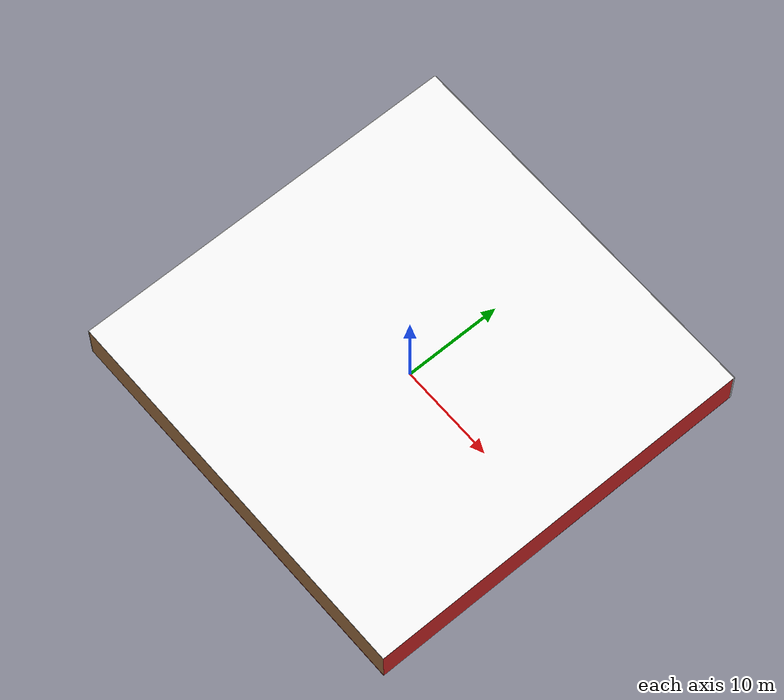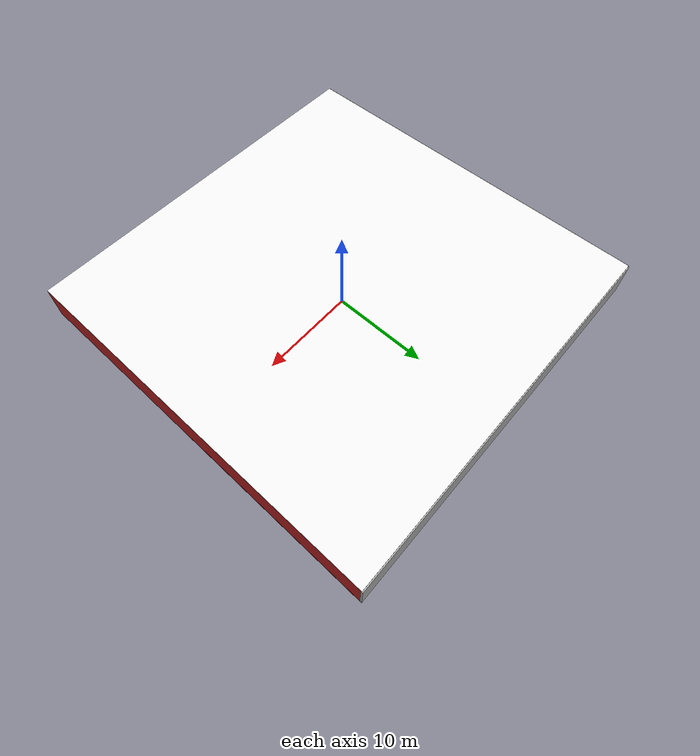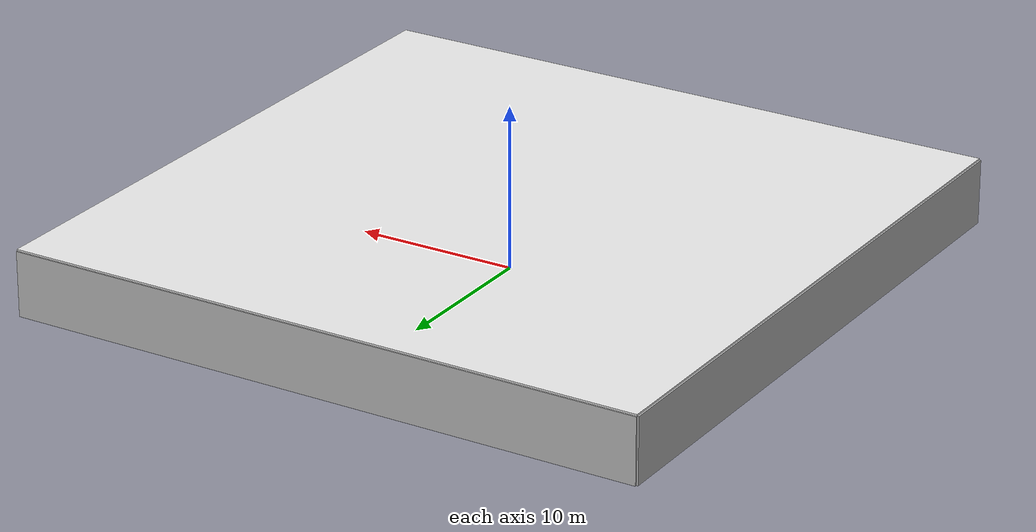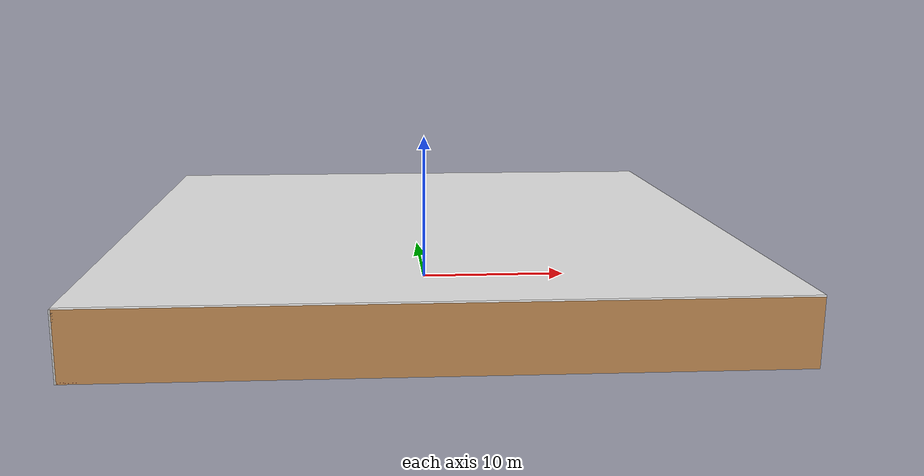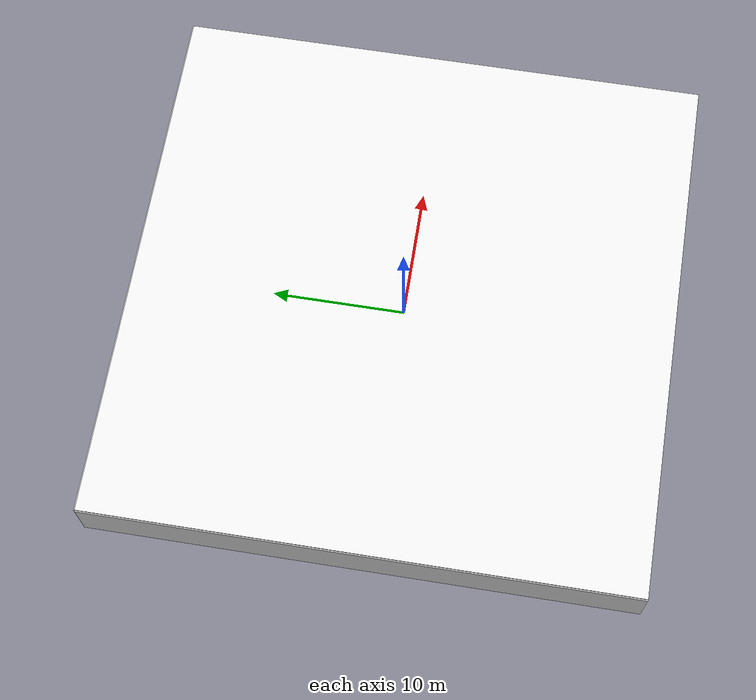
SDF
<sdf version="1.4">
 <world name="default">
  <physics type="ode">
   <max_step_size>0.001</max_step_size>
   <real_time_factor>1</real_time_factor>
   <real_time_update_rate>1000</real_time_update_rate>
   <gravity>0 0 -9.8</gravity>
  </physics>
  <scene><ambient>0.4 0.4 0.4 1</ambient><background>0.7 0.7 0.7 1</background><shadows>1</shadows></scene>
  <model name="Surrounding">
   <static>1</static>
   <link name="Ceiling">
    <collision name="Ceiling_Collision"><geometry><box><size>40 40 0.1</size></box></geometry></collision>
    <visual name="Ceiling_Visual">
     <geometry><box><size>40 40 0.1</size></box></geometry>
     <material>
      <script><uri>file://media/materials/scripts/gazebo.material</uri><name>Gazebo/White</name></script>
     </material>
    </visual>
    <pose>0 0 4.05 0 0 0</pose>
   </link>
   <link name="Wall_South">
    <collision name="Wall_South_Collision">
     <geometry><box><size>40 0 4</size></box></geometry>
     <pose>0 0 2 0 -0 0</pose>
    </collision>
    <visual name="Wall_South_Visual">
     <pose>0 0 2 0 -0 0</pose>
     <geometry><box><size>40 0 4</size></box></geometry>
     <material>
      <script><uri>file://media/materials/scripts/gazebo.material</uri><name>Gazebo/WoodFloor</name></script>
     </material>
    </visual>
    <velocity_decay><linear>0</linear><angular>0</angular></velocity_decay>
    <pose>0 -20 0 0 -0 0</pose>
   </link>
   <link name="Wall_East">
    <collision name="Wall_21_Collision">
     <geometry><box><size>40 0 4</size></box></geometry>
     <pose>0 0 2 0 -0 0</pose>
    </collision>
    <visual name="Wall_21_Visual">
     <pose>0 0 2 0 -0 0</pose>
     <geometry><box><size>40 0 4</size></box></geometry>
     <material>
      <script><uri>file://media/materials/scripts/gazebo.material</uri><name>Gazebo/RedGlow</name></script>
     </material>
    </visual>
    <velocity_decay><linear>0</linear><angular>0</angular></velocity_decay>
    <pose>20 0 0 0 -0 1.5708</pose>
   </link>
   <link name="Wall_North">
    <collision name="Wall_22_Collision">
     <geometry><box><size>40 0.2 4</size></box></geometry>
     <pose>0 0 2 0 -0 0</pose>
    </collision>
    <visual name="Wall_22_Visual">
     <pose>0 0 2 0 -0 0</pose>
     <geometry><box><size>40 0.2 4</size></box></geometry>
     <material>
      <script><uri>file://media/materials/scripts/gazebo.material</uri><name>Gazebo/JointAnchor</name></script>
     </material>
    </visual>
    <velocity_decay><linear>0</linear><angular>0</angular></velocity_decay>
    <pose>0 20 0 0 -0 0</pose>
   </link>
   <link name="Wall_West">
    <collision name="Wall_23_Collision">
     <geometry><box><size>40 0.2 4</size></box></geometry>
     <pose>0 0 2 0 -0 0</pose>
    </collision>
    <visual name="Wall_23_Visual">
     <pose>0 0 2 0 -0 0</pose>
     <geometry><box><size>40 0.2 4</size></box></geometry>
     <material>
      <script><uri>file://media/materials/scripts/gazebo.material</uri><name>Gazebo/LightOn</name></script>
     </material>
    </visual>
    <velocity_decay><linear>0</linear><angular>0</angular></velocity_decay>
    <pose>-20 0 0 0 0 -1.5708</pose>
   </link>
   <link name="Ground_link">
    <collision name="collision">
     <pose>0 0 .05 0 -0 0</pose>
     <geometry><box><size>40 40 0.1</size></box></geometry>
    </collision>
    <visual name="visual">
     <pose>0 0 .05 0 -0 0</pose>
     <geometry><box><size>40 40 0.1</size></box></geometry>
     <material>
      <script><uri>file://media/materials/scripts/gazebo.material</uri><name>Gazebo/Red</name></script>
     </material>
    </visual>
   </link>
   <static>1</static>
  </model>
  <spherical_coordinates>
   <surface_model>EARTH_WGS84</surface_model>
   <latitude_deg>0</latitude_deg>
   <longitude_deg>0</longitude_deg>
   <elevation>0</elevation>
   <heading_deg>0</heading_deg>
  </spherical_coordinates>
  <light name="lightball_0" type="diffuse">
   <diffuse>0.8 0.8 0.8 1</diffuse>
   <specular>0.2 0.2 0.2 1</specular>
   <attenuation>
    <range>100</range>
    <constant>0.7</constant>
    <linear>0.01</linear>
    <quadratic>0.001</quadratic>
   </attenuation>
   <direction>-0.5 0.1 -0.9</direction>
   <pose>-7.57989378055 19.7409264689 2.34529799542 0 0 0</pose>
  </light>
  <light name="lightball_1" type="diffuse">
   <diffuse>0.8 0.8 0.8 1</diffuse>
   <specular>0.2 0.2 0.2 1</specular>
   <attenuation>
    <range>100</range>
    <constant>0.7</constant>
    <linear>0.01</linear>
    <quadratic>0.001</quadratic>
   </attenuation>
   <direction>-0.5 0.1 -0.9</direction>
   <pose>-14.4721941216 11.3481353988 1.97830729891 0 0 0</pose>
  </light>
  <light name="lightball_2" type="diffuse">
   <diffuse>0.8 0.8 0.8 1</diffuse>
   <specular>0.2 0.2 0.2 1</specular>
   <attenuation>
    <range>100</range>
    <constant>0.7</constant>
    <linear>0.01</linear>
    <quadratic>0.001</quadratic>
   </attenuation>
   <direction>-0.5 0.1 -0.9</direction>
   <pose>-9.78223414374 19.2056261583 2.28519314077 0 0 0</pose>
  </light>
  <light name="lightball_3" type="diffuse">
   <diffuse>0.8 0.8 0.8 1</diffuse>
   <specular>0.2 0.2 0.2 1</specular>
   <attenuation>
    <range>100</range>
    <constant>0.7</constant>
    <linear>0.01</linear>
    <quadratic>0.001</quadratic>
   </attenuation>
   <direction>-0.5 0.1 -0.9</direction>
   <pose>14.5992834688 -9.13213076136 2.20691014271 0 0 0</pose>
  </light>
  <light name="lightball_4" type="diffuse">
   <diffuse>0.8 0.8 0.8 1</diffuse>
   <specular>0.2 0.2 0.2 1</specular>
   <attenuation>
    <range>100</range>
    <constant>0.7</constant>
    <linear>0.01</linear>
    <quadratic>0.001</quadratic>
   </attenuation>
   <direction>-0.5 0.1 -0.9</direction>
   <pose>4.41614234115 17.8470238149 1.95125607544 0 0 0</pose>
  </light>
  <light name="lightball_5" type="diffuse">
   <diffuse>0.8 0.8 0.8 1</diffuse>
   <specular>0.2 0.2 0.2 1</specular>
   <attenuation>
    <range>100</range>
    <constant>0.7</constant>
    <linear>0.01</linear>
    <quadratic>0.001</quadratic>
   </attenuation>
   <direction>-0.5 0.1 -0.9</direction>
   <pose>-0.792253421119 3.26800925691 3.39666321952 0 0 0</pose>
  </light>
  <light name="lightball_6" type="diffuse">
   <diffuse>0.8 0.8 0.8 1</diffuse>
   <specular>0.2 0.2 0.2 1</specular>
   <attenuation>
    <range>100</range>
    <constant>0.7</constant>
    <linear>0.01</linear>
    <quadratic>0.001</quadratic>
   </attenuation>
   <direction>-0.5 0.1 -0.9</direction>
   <pose>-15.1221848807 -3.2563856097 3.22475130088 0 0 0</pose>
  </light>
  <include><uri>model://cabinet</uri><pose>-18.3661432188 2.50026669857 0 0 0 3.01771295128</pose></include>
  <include>
   <uri>model://textured_shapes</uri>
   <pose>-17.3634532651 8.95702112172 0 0 0 3.07387576323</pose>
  </include>
  <include>
   <uri>model://construction_cone</uri>
   <pose>-17.9092906236 14.9663057539 0 0 0 0.570104747349</pose>
  </include>
  <include>
   <uri>model://construction_cone</uri>
   <pose>-13.5349785954 9.78146082751 0 0 0 0.947087067283</pose>
  </include>
  <include>
   <uri>model://robocup_3Dsim_goal</uri>
   <pose>-11.1531074316 -2.03955995959 0 0 0 0.975912448796</pose>
  </include>
  <include><uri>model://cabinet</uri><pose>-11.3925991779 9.36502638899 0 0 0 1.3636395005</pose></include>
  <include><uri>model://table</uri><pose>-12.1200770519 17.8186899658 0 0 0 1.45901608129</pose></include>
  <include>
   <uri>model://construction_cone</uri>
   <pose>-9.45965868703 -2.08536739502 0 0 0 1.93260078887</pose>
  </include>
  <include><uri>model://cabinet</uri><pose>-8.46422406316 9.74602850309 0 0 0 2.25084237077</pose></include>
  <include><uri>model://table</uri><pose>-5.40085332992 10.6858989075 0 0 0 0.515030257</pose></include>
  <include>
   <uri>model://textured_shapes</uri>
   <pose>-5.51230792185 14.4990086902 0 0 0 2.12418439971</pose>
  </include>
  <include><uri>model://cabinet</uri><pose>-2.51777068696 -7.83166320303 0 0 0 2.26001050545</pose></include>
  <include><uri>model://cabinet</uri><pose>-0.151739010852 4.20224175517 0 0 0 1.96067589184</pose></include>
  <include><uri>model://table</uri><pose>2.47024123504 -5.09584720725 0 0 0 1.00453476277</pose></include>
  <include><uri>model://cabinet</uri><pose>2.67796431845 9.45938593397 0 0 0 0.691733261897</pose></include>
  <include>
   <uri>model://construction_cone</uri>
   <pose>7.49851402288 -11.6594134261 0 0 0 2.96424876511</pose>
  </include>
  <include><uri>model://cabinet</uri><pose>10.4197559857 -8.53795987548 0 0 0 1.27072184566</pose></include>
  <include><uri>model://table</uri><pose>12.8599879985 -14.9096092652 0 0 0 0.5300756654</pose></include>
  <include>
   <uri>model://textured_shapes</uri>
   <pose>11.8311604049 -3.2776234629 0 0 0 2.01750278147</pose>
  </include>
  <include>
   <uri>model://robocup_3Dsim_goal</uri>
   <pose>16.4648193109 17.9652826992 0 0 0 1.87272664334</pose>
  </include>
  <include><uri>model://table</uri><pose>19.5509404816 -17.8695315446 0 0 0 1.60905751371</pose></include>
  <include><uri>model://cabinet</uri><pose>19.4633053251 6.38557856225 0 0 0 1.14693708441</pose></include>
 </world>
</sdf>

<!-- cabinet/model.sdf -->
<sdf version="1.5">
  <model name="cabinet">
    <static>true</static>
    <link name="cabinet_bottom_plate">
      <inertial>
        <pose>0 0 -1 0 0 0</pose>
        <inertia>
          <ixx>2.050000</ixx>
          <ixy>0</ixy>
          <ixz>0</ixz>
          <iyy>2.050000</iyy>
          <iyz>0</iyz>
          <izz>2.050000</izz>
        </inertia>
        <mass>25.000000</mass>
      </inertial>
      <collision name="cabinet_bottom_plate_geom">
        <pose>0 0 0.010000 0 0 0</pose>
        <geometry>
          <box>
            <size>0.450000 0.450000 0.020000</size>
          </box>
        </geometry>
      </collision>
      <visual name="cabinet_bottom_plate_geom_visual">
        <pose>0 0 0.010000 0 0 0</pose>
        <geometry>
          <box>
            <size>0.450000 0.450000 0.020000</size>
          </box>
        </geometry>
        <material>
          <script>
            <uri>model://media/materials/scripts/gazebo.material</uri>
            <name>Gazebo/Wood</name>
          </script>
        </material>
      </visual>
      <collision name="cabinet_bottom_plate_geom_cabinet_back_plate">
        <pose>0.235000 0 0.510000 0 0 0</pose>
        <geometry>
          <box>
            <size>0.020000 0.450000 1.020000</size>
          </box>
        </geometry>
      </collision>
      <visual name="cabinet_bottom_plate_geom_cabinet_back_plate_visual">
        <pose>0.235000 0 0.510000 0 0 0</pose>
        <geometry>
          <box>
            <size>0.020000 0.450000 1.020000</size>
          </box>
        </geometry>
        <material>
          <script>
            <uri>model://media/materials/scripts/gazebo.material</uri>
            <name>Gazebo/Wood</name>
          </script>
        </material>
      </visual>
      <collision name="cabinet_bottom_plate_geom_cabinet_left_plate">
        <pose>0 0.235000 0.510000 0 0 0</pose>
        <geometry>
          <box>
            <size>0.450000 0.020000 1.020000</size>
          </box>
        </geometry>
      </collision>
      <visual name="cabinet_bottom_plate_geom_cabinet_left_plate_visual">
        <pose>0 0.235000 0.510000 0 0 0</pose>
        <geometry>
          <box>
            <size>0.450000 0.020000 1.020000</size>
          </box>
        </geometry>
        <material>
          <script>
            <uri>model://media/materials/scripts/gazebo.material</uri>
            <name>Gazebo/Wood</name>
          </script>
        </material>
      </visual>
      <collision name="cabinet_bottom_plate_geom_cabinet_middle_plate">
        <pose>0 0 0.510000 0 0 0</pose>
        <geometry>
          <box>
            <size>0.450000 0.450000 0.020000</size>
          </box>
        </geometry>
      </collision>
      <visual name="cabinet_bottom_plate_geom_cabinet_middle_plate_visual">
        <pose>0 0 0.510000 0 0 0</pose>
        <geometry>
          <box>
            <size>0.450000 0.450000 0.020000</size>
          </box>
        </geometry>
        <material>
          <script>
            <uri>model://media/materials/scripts/gazebo.material</uri>
            <name>Gazebo/Wood</name>
          </script>
        </material>
      </visual>
      <collision name="cabinet_bottom_plate_geom_cabinet_right_plate">
        <pose>0 -0.235000 0.510000 0 0 0</pose>
        <geometry>
          <box>
            <size>0.450000 0.020000 1.020000</size>
          </box>
        </geometry>
      </collision>
      <visual name="cabinet_bottom_plate_geom_cabinet_right_plate_visual">
        <pose>0 -0.235000 0.510000 0 0 0</pose>
        <geometry>
          <box>
            <size>0.450000 0.020000 1.020000</size>
          </box>
        </geometry>
        <material>
          <script>
            <uri>model://media/materials/scripts/gazebo.material</uri>
            <name>Gazebo/Wood</name>
          </script>
        </material>
      </visual>
      <collision name="cabinet_bottom_plate_geom_cabinet_top_plate">
        <pose>0 0 1.010000 0 0 0</pose>
        <geometry>
          <box>
            <size>0.450000 0.450000 0.020000</size>
          </box>
        </geometry>
      </collision>
      <visual name="cabinet_bottom_plate_geom_cabinet_top_plate_visual">
        <pose>0 0 1.010000 0 0 0</pose>
        <geometry>
          <box>
            <size>0.450000 0.450000 0.020000</size>
          </box>
        </geometry>
        <material>
          <script>
            <uri>model://media/materials/scripts/gazebo.material</uri>
            <name>Gazebo/Wood</name>
          </script>
        </material>
      </visual>
    </link>
  </model>
</sdf>

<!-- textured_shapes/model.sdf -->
<sdf version="1.6">
  <model name="textured_shapes">
    <pose>0 0 0.5 0 0 0</pose>
    <link name="box">
      <pose>0 -1.5 0 0 0 0</pose>
      <collision name="collision">
        <geometry>
          <box>
            <size>1 1 1</size>
          </box>
        </geometry>
      </collision>
      <visual name="visual">
        <geometry>
          <box>
            <size>1 1 1</size>
          </box>
        </geometry>
        <material>
          <script>
            <uri>model://../model_source/models/textured_shapes/materials/scripts</uri>
            <uri>model://../model_source/models/textured_shapes/materials/textures</uri>
            <name>TexturedShape/Squares</name>
          </script>
        </material>
      </visual>
    </link>
    <link name="sphere">
      <collision name="collision">
        <geometry>
          <sphere>
            <radius>0.5</radius>
          </sphere>
        </geometry>
      </collision>
      <visual name="visual">
        <geometry>
          <sphere>
            <radius>0.5</radius>
          </sphere>
        </geometry>
        <material>
          <script>
            <uri>model://../model_source/models/textured_shapes/materials/scripts</uri>
            <uri>model://../model_source/models/textured_shapes/materials/textures</uri>
            <name>TexturedShape/Squares</name>
          </script>
        </material>
      </visual>
    </link>
    <link name="cylinder">
      <pose>0 1.5 0 0 0 0</pose>
      <collision name="collision">
        <geometry>
          <cylinder>
            <radius>0.5</radius>
            <length>1</length>
          </cylinder>
        </geometry>
      </collision>
      <visual name="visual">
        <geometry>
          <cylinder>
            <radius>0.5</radius>
            <length>1</length>
          </cylinder>
        </geometry>
        <material>
          <script>
            <uri>model://../model_source/models/textured_shapes/materials/scripts</uri>
            <uri>model://../model_source/models/textured_shapes/materials/textures</uri>
            <name>TexturedShape/Squares</name>
          </script>
        </material>
      </visual>
    </link>
  </model>
</sdf>

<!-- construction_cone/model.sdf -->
<sdf version="1.5">
  <model name="Construction Cone">
    <link name="link">
      <collision name="collision">
        <geometry>
          <mesh>
            <scale>10 10 10</scale>
            <uri>file://isr-testbed/construction_cone/meshes/construction_cone.dae</uri>
          </mesh>
        </geometry>
      </collision>
      <visual name="visual">
        <geometry>
          <mesh>
            <scale>10 10 10</scale>
            <uri>file://isr-testbed/construction_cone/meshes/construction_cone.dae</uri>
          </mesh>
        </geometry>
      </visual>
    </link>
  </model>
</sdf>

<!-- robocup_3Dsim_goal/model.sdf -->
<sdf version="1.5">
  <model name="robocup_3d_goal">
    <static>true</static>
    <link name="left_post">
      <pose>0 1.05 0.45 0 0 0</pose>
      <collision name="collision">
        <geometry>
          <cylinder>
            <radius>0.05</radius>
            <length>0.9</length>
          </cylinder>
        </geometry>
      </collision>
      <visual name="visual">
        <geometry>
          <cylinder>
            <radius>0.05</radius>
            <length>0.9</length>
          </cylinder>
        </geometry>
        <material>
          <script>
            <uri>file://media/materials/scripts/gazebo.material</uri>
            <name>Gazebo/ZincYellow</name>
          </script>
        </material>
      </visual>
    </link>
    <link name="left_support_horiz_lower">
      <pose>0.30 1.05 0.01 0 0 0</pose>
      <collision name="collision">
        <geometry>
          <box>
            <size>0.50 0.02 0.02</size>
          </box>
        </geometry>
      </collision>
      <visual name="visual">
        <geometry>
          <box>
            <size>0.50 0.02 0.02</size>
          </box>
        </geometry>
        <material>
          <script>
            <uri>file://media/materials/scripts/gazebo.material</uri>
            <name>Gazebo/White</name>
          </script>
        </material>
      </visual>
    </link>
    <link name="left_support_horiz_upper">
      <pose>0.30 1.05 0.79 0 0 0</pose>
      <collision name="collision">
        <geometry>
          <box>
            <size>0.50 0.02 0.02</size>
          </box>
        </geometry>
      </collision>
      <visual name="visual">
        <geometry>
          <box>
            <size>0.50 0.02 0.02</size>
          </box>
        </geometry>
        <material>
          <script>
            <uri>file://media/materials/scripts/gazebo.material</uri>
            <name>Gazebo/White</name>
          </script>
        </material>
      </visual>
    </link>
    <link name="left_support_vertical">
      <pose>0.56 1.05 0.4 0 1.5708 0</pose>
      <collision name="collision">
        <geometry>
          <box>
            <size>0.80 0.02 0.02</size>
          </box>
        </geometry>
      </collision>
      <visual name="visual">
        <geometry>
          <box>
            <size>0.80 0.02 0.02</size>
          </box>
        </geometry>
        <material>
          <script>
            <uri>file://media/materials/scripts/gazebo.material</uri>
            <name>Gazebo/White</name>
          </script>
        </material>
      </visual>
    </link>
    <link name="right_support_horiz_lower">
      <pose>0.30 -1.05 0.01 0 0 0</pose>
      <collision name="collision">
        <geometry>
          <box>
            <size>0.50 0.02 0.02</size>
          </box>
        </geometry>
      </collision>
      <visual name="visual">
        <geometry>
          <box>
            <size>0.50 0.02 0.02</size>
          </box>
        </geometry>
        <material>
          <script>
            <uri>file://media/materials/scripts/gazebo.material</uri>
            <name>Gazebo/White</name>
          </script>
        </material>
      </visual>
    </link>
    <link name="right_support_horiz_upper">
      <pose>0.30 -1.05 0.79 0 0 0</pose>
      <collision name="collision">
        <geometry>
          <box>
            <size>0.50 0.02 0.02</size>
          </box>
        </geometry>
      </collision>
      <visual name="visual">
        <geometry>
          <box>
            <size>0.50 0.02 0.02</size>
          </box>
        </geometry>
        <material>
          <script>
            <uri>file://media/materials/scripts/gazebo.material</uri>
            <name>Gazebo/White</name>
          </script>
        </material>
      </visual>
    </link>
    <link name="right_support_vertical">
      <pose>0.56 -1.05 0.4 0 1.5708 0</pose>
      <collision name="collision">
        <geometry>
          <box>
            <size>0.80 0.02 0.02</size>
          </box>
        </geometry>
      </collision>
      <visual name="visual">
        <geometry>
          <box>
            <size>0.80 0.02 0.02</size>
          </box>
        </geometry>
        <material>
          <script>
            <uri>file://media/materials/scripts/gazebo.material</uri>
            <name>Gazebo/White</name>
          </script>
        </material>
      </visual>
    </link>
    <link name="center_support_horiz_lower">
      <pose>0.56 0 0.01 0 1.5708 0</pose>
      <collision name="collision">
        <geometry>
          <box>
            <size>0.02 2.08 0.02</size>
          </box>
        </geometry>
      </collision>
      <visual name="visual">
        <geometry>
          <box>
            <size>0.02 2.08 0.02</size>
          </box>
        </geometry>
        <material>
          <script>
            <uri>file://media/materials/scripts/gazebo.material</uri>
            <name>Gazebo/White</name>
          </script>
        </material>
      </visual>
    </link>
    <link name="center_support_horiz_upper">
      <pose>0.56 0 0.79 0 1.5708 0</pose>
      <collision name="collision">
        <geometry>
          <box>
            <size>0.02 2.08 0.02</size>
          </box>
        </geometry>
      </collision>
      <visual name="visual">
        <geometry>
          <box>
            <size>0.02 2.08 0.02</size>
          </box>
        </geometry>
        <material>
          <script>
            <uri>file://media/materials/scripts/gazebo.material</uri>
            <name>Gazebo/White</name>
          </script>
        </material>
      </visual>
    </link>
    <link name="right_post">
      <pose>0 -1.05 0.45 0 0 0</pose>
      <collision name="collision">
        <geometry>
          <cylinder>
            <radius>0.05</radius>
            <length>0.9</length>
          </cylinder>
        </geometry>
      </collision>
      <visual name="visual">
        <geometry>
          <cylinder>
            <radius>0.05</radius>
            <length>0.9</length>
          </cylinder>
        </geometry>
        <material>
          <script>
            <uri>file://media/materials/scripts/gazebo.material</uri>
            <name>Gazebo/ZincYellow</name>
          </script>
        </material>
      </visual>
    </link>
    <link name="crossbar">
      <pose>0 0 0.85 1.57 1.57 0</pose>
      <collision name="collision">
        <geometry>
          <cylinder>
            <radius>0.05</radius>
            <length>2.0</length>
          </cylinder>
        </geometry>
      </collision>
      <visual name="visual">
        <geometry>
          <cylinder>
            <radius>0.05</radius>
            <length>2.0</length>
          </cylinder>
        </geometry>
        <material>
          <script>
            <uri>file://media/materials/scripts/gazebo.material</uri>
            <name>Gazebo/ZincYellow</name>
          </script>
        </material>
      </visual>
    </link>
    <link name="center_net">
      <pose>0.56 0 0.40 0 0 0</pose>
      <collision name="collision">
        <geometry>
          <box>
            <size>0.01 2.1 0.80</size>
          </box>
        </geometry>
      </collision>
      <visual name="visual">
        <geometry>
          <box>
            <size>0.01 2.1 0.80</size>
          </box>
        </geometry>
        <material>
          <script>
            <uri>model://../model_source/models/robocup09_spl_field/materials/scripts/</uri>
            <uri>model://../model_source/models/robocup09_spl_field/materials/textures/</uri>
            <name>RoboCup/Net</name>
          </script>
        </material>
      </visual>
    </link>
    <link name="left_net">
      <pose>0.30 1.05 0.40 0 0 0</pose>
      <collision name="collision">
        <geometry>
          <box>
            <size>0.50 0.01 0.76</size>
          </box>
        </geometry>
      </collision>
      <visual name="visual">
        <geometry>
          <box>
            <size>0.50 0.01 0.76</size>
          </box>
        </geometry>
        <material>
          <script>
            <uri>model://../model_source/models/robocup09_spl_field/materials/scripts/</uri>
            <uri>model://../model_source/models/robocup09_spl_field/materials/textures/</uri>
            <name>RoboCup/Net</name>
          </script>
        </material>
      </visual>
    </link>
    <link name="right_net">
      <pose>0.30 -1.05 0.40 0 0 0</pose>
      <collision name="collision">
        <geometry>
          <box>
            <size>0.50 0.01 0.76</size>
          </box>
        </geometry>
      </collision>
      <visual name="visual">
        <geometry>
          <box>
            <size>0.50 0.01 0.76</size>
          </box>
        </geometry>
        <material>
          <script>
            <uri>model://../model_source/models/robocup09_spl_field/materials/scripts/</uri>
            <uri>model://../model_source/models/robocup09_spl_field/materials/textures/</uri>
            <name>RoboCup/Net</name>
          </script>
        </material>
      </visual>
    </link>
  </model>
</sdf>

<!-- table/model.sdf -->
<sdf version="1.5">
  <model name="table">
    <static>true</static>
    <link name="link">
      <collision name="surface">
        <pose>0 0 1.0 0 0 0</pose>
        <geometry>
          <box>
            <size>1.5 0.8 0.03</size>
          </box>
        </geometry>
        <surface>
          <friction>
            <ode>
              <mu>0.6</mu>
              <mu2>0.6</mu2>
            </ode>
          </friction>
        </surface>
      </collision>
      <visual name="visual1">
        <pose>0 0 1.0 0 0 0</pose>
        <geometry>
          <box>
            <size>1.5 0.8 0.03</size>
          </box>
        </geometry>
        <material>
          <script>
            <uri>model://media/materials/scripts/gazebo.material</uri>
            <name>Gazebo/Wood</name>
          </script>
        </material>
      </visual>
      <collision name="front_left_leg">
        <pose>0.68 0.38 0.5 0 0 0</pose>
        <geometry>
          <cylinder>
            <radius>0.02</radius>
            <length>1.0</length>
          </cylinder>
        </geometry>
      </collision>
      <visual name="front_left_leg">
        <pose>0.68 0.38 0.5 0 0 0</pose>
        <geometry>
          <cylinder>
            <radius>0.02</radius>
            <length>1.0</length>
          </cylinder>
        </geometry>
        <material>
          <script>
            <uri>model://media/materials/scripts/gazebo.material</uri>
            <name>Gazebo/Grey</name>
          </script>
        </material>
      </visual>
      <collision name="front_right_leg">
        <pose>0.68 -0.38 0.5 0 0 0</pose>
        <geometry>
          <cylinder>
            <radius>0.02</radius>
            <length>1.0</length>
          </cylinder>
        </geometry>
      </collision>
      <visual name="front_right_leg">
        <pose>0.68 -0.38 0.5 0 0 0</pose>
        <geometry>
          <cylinder>
            <radius>0.02</radius>
            <length>1.0</length>
          </cylinder>
        </geometry>
        <material>
          <script>
            <uri>model://media/materials/scripts/gazebo.material</uri>
            <name>Gazebo/Grey</name>
          </script>
        </material>
      </visual>
      <collision name="back_right_leg">
        <pose>-0.68 -0.38 0.5 0 0 0</pose>
        <geometry>
          <cylinder>
            <radius>0.02</radius>
            <length>1.0</length>
          </cylinder>
        </geometry>
      </collision>
      <visual name="back_right_leg">
        <pose>-0.68 -0.38 0.5 0 0 0</pose>
        <geometry>
          <cylinder>
            <radius>0.02</radius>
            <length>1.0</length>
          </cylinder>
        </geometry>
        <material>
          <script>
            <uri>model://media/materials/scripts/gazebo.material</uri>
            <name>Gazebo/Grey</name>
          </script>
        </material>
      </visual>
      <collision name="back_left_leg">
        <pose>-0.68 0.38 0.5 0 0 0</pose>
        <geometry>
          <cylinder>
            <radius>0.02</radius>
            <length>1.0</length>
          </cylinder>
        </geometry>
      </collision>
      <visual name="back_left_leg">
        <pose>-0.68 0.38 0.5 0 0 0</pose>
        <geometry>
          <cylinder>
            <radius>0.02</radius>
            <length>1.0</length>
          </cylinder>
        </geometry>
        <material>
          <script>
            <uri>model://media/materials/scripts/gazebo.material</uri>
            <name>Gazebo/Grey</name>
          </script>
        </material>
      </visual>
    </link>
  </model>
</sdf>
